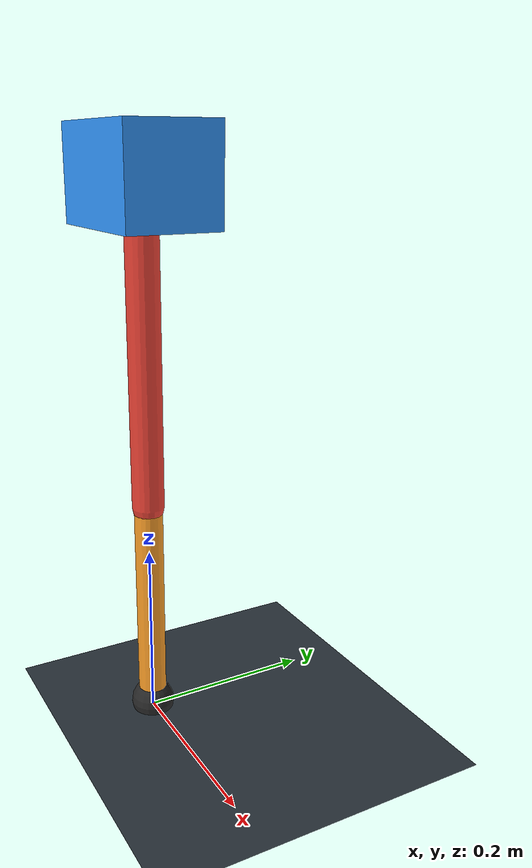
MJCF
<mujoco model="single_axis_two_bar">
  <compiler angle="radian" inertiafromgeom="true"/>
  <option timestep="0.001" integrator="implicitfast" gravity="0 0 -9.81"/>
  <default>
    <joint damping="0.08"/>
    <geom friction="1.2 0.01 0.0001" condim="3"/>
  </default>
  <worldbody>
    <geom name="floor" type="plane" size="5 5 0.1" rgba="0.18 0.22 0.25 1"/>
    <body name="carriage" pos="0 0 0.6057045847598687">
      <joint name="pole_slide" type="slide" axis="0 0 1"/>
      <geom name="payload" type="box" size="0.08 0.05 0.05" mass="2.6299340552654584" rgba="0.2 0.6 1 1"/>
      <body name="thigh" pos="0 0 0">
        <joint name="hip" type="hinge" axis="0 1 0"/>
        <geom name="thigh_link" type="capsule" fromto="0 0 0 0 0 -0.34971961341119084" size="0.018" mass="0.24917984569244936" rgba="0.9 0.25 0.2 1"/>
        <body name="shank" pos="0 0 -0.34971961341119084">
          <joint name="knee" type="hinge" axis="0 1 0"/>
          <geom name="shank_link" type="capsule" fromto="0 0 0 0 0 -0.24894490695980773" size="0.016" mass="0.1773765357255798" rgba="0.95 0.6 0.15 1"/>
          <geom name="foot" type="sphere" pos="0 0 -0.24894490695980773" size="0.025" mass="0.03" rgba="0.15 0.15 0.15 1"/>
          <site name="toe" pos="0 0 -0.24894490695980773" size="0.008"/>
        </body>
      </body>
    </body>
  </worldbody>
  <actuator>
    <motor name="hip_motor" joint="hip" ctrlrange="-32.939035552033964 32.939035552033964"/>
    <motor name="knee_motor" joint="knee" ctrlrange="-101.13534912012489 101.13534912012489"/>
  </actuator>
</mujoco>
